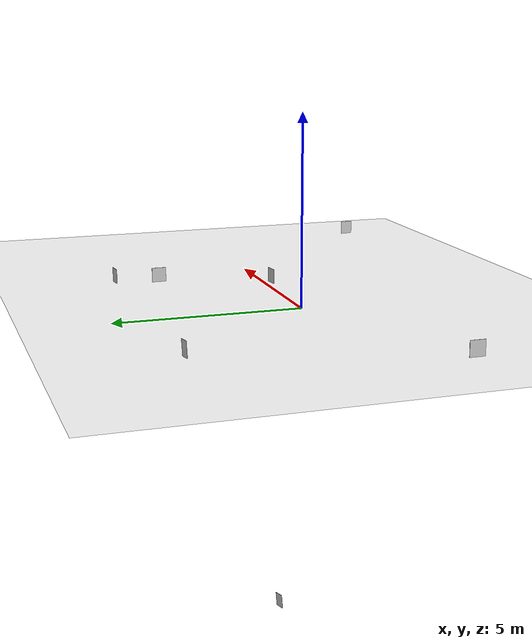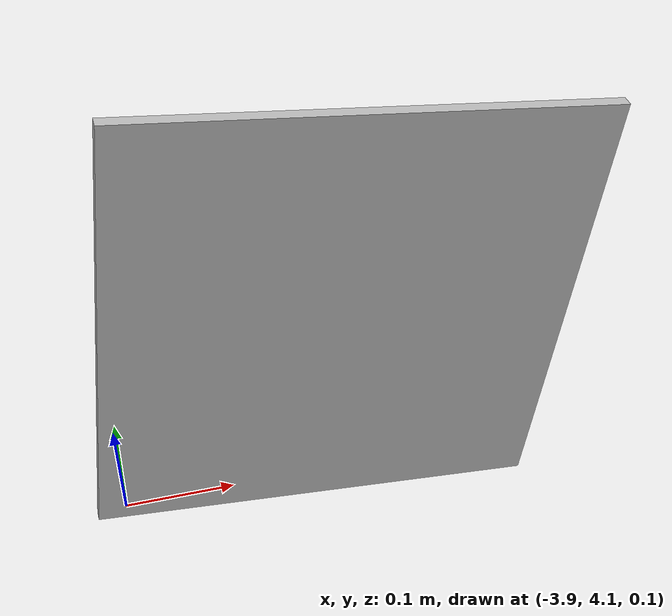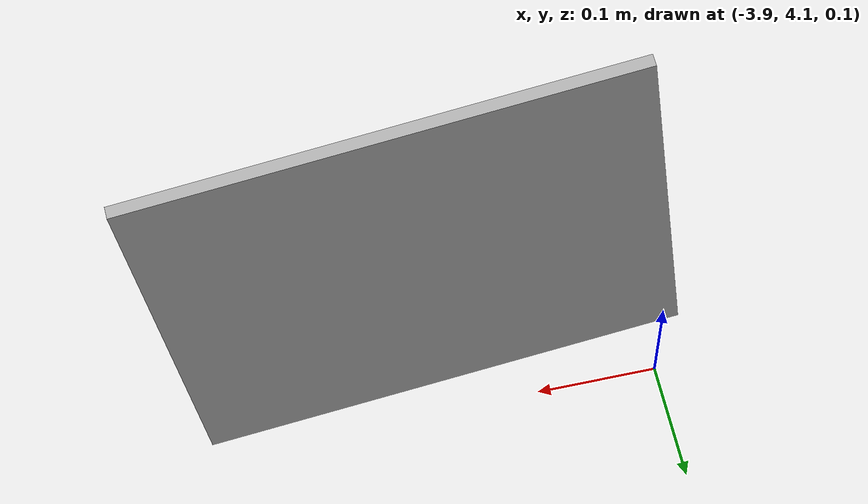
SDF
<sdf version="1.7">
 <world name="default">
  <light name="sun" type="directional">
   <pose>0 0 10 0 -0 0</pose>
   <diffuse>0.8 0.8 0.8 1</diffuse>
   <specular>0.2 0.2 0.2 1</specular>
   <attenuation>
    <range>1000</range>
    <constant>0.9</constant>
    <linear>0.01</linear>
    <quadratic>0.001</quadratic>
   </attenuation>
   <direction>-0.5 0.1 -0.9</direction>
   <spot><inner_angle>0</inner_angle><outer_angle>0</outer_angle><falloff>0</falloff></spot>
  </light>
  <model name="ground_plane">
   <static>1</static>
   <link name="link">
    <collision name="collision">
     <geometry><plane><normal>0 0 1</normal><size>100 100</size></plane></geometry>
     <surface>
      <contact><collide_bitmask>65535</collide_bitmask></contact>
      <friction><ode><mu>100</mu><mu2>50</mu2></ode></friction>
     </surface>
    </collision>
    <visual name="visual">
     <cast_shadows>0</cast_shadows>
     <geometry><plane><normal>0 0 1</normal><size>100 100</size></plane></geometry>
     <material>
      <script><uri>file://media/materials/scripts/gazebo.material</uri><name>Gazebo/Grey</name></script>
     </material>
    </visual>
   </link>
  </model>
  <gravity>0 0 -9.8</gravity>
  <magnetic_field>6e-06 2.3e-05 -4.2e-05</magnetic_field>
  <atmosphere type="adiabatic"/>
  <physics type="ode">
   <max_step_size>0.001</max_step_size>
   <real_time_factor>1</real_time_factor>
   <real_time_update_rate>1000</real_time_update_rate>
  </physics>
  <scene><ambient>0.4 0.4 0.4 1</ambient><background>0.7 0.7 0.7 1</background><shadows>1</shadows></scene>
  <spherical_coordinates>
   <surface_model>EARTH_WGS84</surface_model>
   <latitude_deg>0</latitude_deg>
   <longitude_deg>0</longitude_deg>
   <elevation>0</elevation>
   <heading_deg>0</heading_deg>
  </spherical_coordinates>
  <model name="Apriltag36_11_00000">
   <link name="main">
    <visual name="main_Visual">
     <geometry><box><size>0.4 0.4 0.01</size></box></geometry>
     <material>
      <script>
       <uri>model://Apriltag36_11_00000/materials/scripts</uri>
       <uri>model://Apriltag36_11_00000/materials/textures</uri>
       <name>Apriltag36_11_00000</name>
      </script>
     </material>
    </visual>
   </link>
   <static>1</static>
   <pose>-3.70102 4.07531 0.307152 -1.44159 1.44159 -2.99159</pose>
  </model>
  <model name="Apriltag36_11_00000_clone">
   <link name="main">
    <visual name="main_Visual">
     <geometry><box><size>0.4 0.4 0.01</size></box></geometry>
     <material>
      <script>
       <uri>model://Apriltag36_11_00000/materials/scripts</uri>
       <uri>model://Apriltag36_11_00000/materials/textures</uri>
       <name>Apriltag36_11_00000</name>
      </script>
     </material>
    </visual>
   </link>
   <static>1</static>
   <pose>4.21088 2.78504 0.187132 3.14159 1.54159 3.14159</pose>
  </model>
  <model name="Apriltag36_11_00000_clone_0">
   <link name="main">
    <visual name="main_Visual">
     <geometry><box><size>0.4 0.4 0.01</size></box></geometry>
     <material>
      <script>
       <uri>model://Apriltag36_11_00000/materials/scripts</uri>
       <uri>model://Apriltag36_11_00000/materials/textures</uri>
       <name>Apriltag36_11_00000</name>
      </script>
     </material>
    </visual>
   </link>
   <static>1</static>
   <pose>4.4431 4.00382 0.2 -1.64161 1.54159 3.14158</pose>
  </model>
  <model name="Apriltag36_11_00000_clone_1">
   <link name="main">
    <visual name="main_Visual">
     <geometry><box><size>0.4 0.4 0.01</size></box></geometry>
     <material>
      <script>
       <uri>model://Apriltag36_11_00000/materials/scripts</uri>
       <uri>model://Apriltag36_11_00000/materials/textures</uri>
       <name>Apriltag36_11_00000</name>
      </script>
     </material>
    </visual>
   </link>
   <static>1</static>
   <pose>2.38791 -0.230537 -9.69285 -1.54159 1.39159 -2.99159</pose>
  </model>
  <model name="Apriltag36_11_00000_clone_0_clone">
   <link name="main">
    <visual name="main_Visual">
     <geometry><box><size>0.4 0.4 0.01</size></box></geometry>
     <material>
      <script>
       <uri>model://Apriltag36_11_00000/materials/scripts</uri>
       <uri>model://Apriltag36_11_00000/materials/textures</uri>
       <name>Apriltag36_11_00000</name>
      </script>
     </material>
    </visual>
   </link>
   <static>1</static>
   <pose>3.06328 -0.190174 0.2 -1.64161 1.54159 3.14158</pose>
  </model>
  <model name="Apriltag36_11_00000_clone_0_clone_0">
   <link name="main">
    <visual name="main_Visual">
     <geometry><box><size>0.4 0.4 0.01</size></box></geometry>
     <material>
      <script>
       <uri>model://Apriltag36_11_00000/materials/scripts</uri>
       <uri>model://Apriltag36_11_00000/materials/textures</uri>
       <name>Apriltag36_11_00000</name>
      </script>
     </material>
    </visual>
   </link>
   <static>1</static>
   <pose>9.3594 -4.993 0.2 -0.191636 1.54159 3.14155</pose>
  </model>
  <model name="Apriltag36_11_00000_clone_clone">
   <link name="main">
    <visual name="main_Visual">
     <geometry><box><size>0.4 0.4 0.01</size></box></geometry>
     <material>
      <script>
       <uri>model://Apriltag36_11_00000/materials/scripts</uri>
       <uri>model://Apriltag36_11_00000/materials/textures</uri>
       <name>Apriltag36_11_00000</name>
      </script>
     </material>
    </visual>
   </link>
   <static>1</static>
   <pose>-5.36272 -2.26094 0.191188 3.14159 1.54159 3.14159</pose>
  </model>
 </world>
</sdf>
